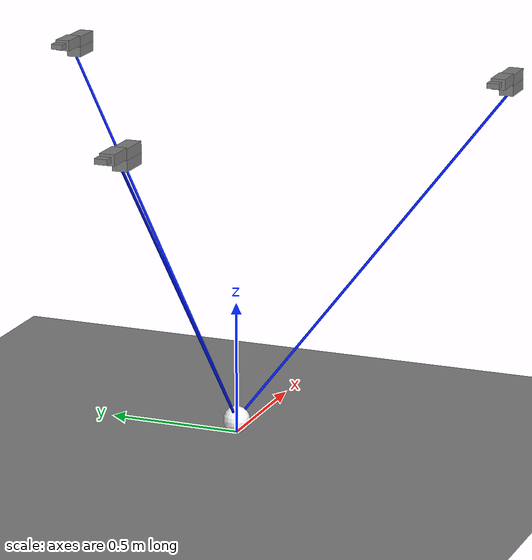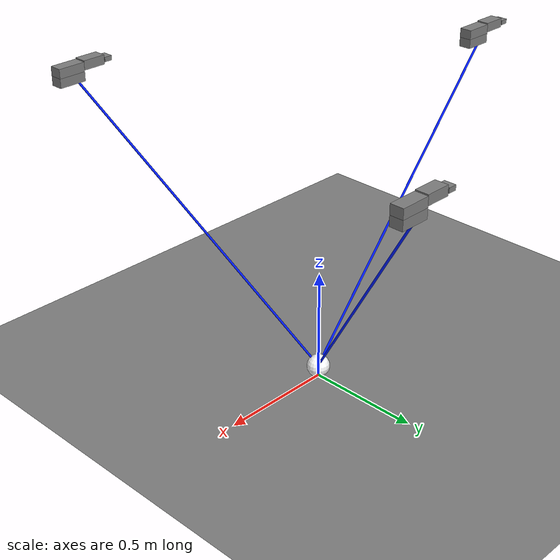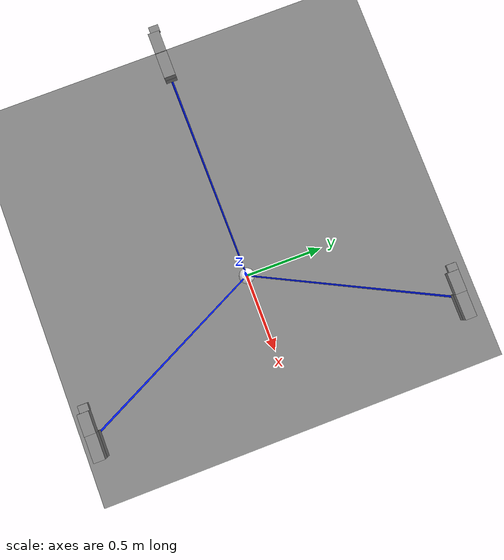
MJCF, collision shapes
<?xml version="1.0" encoding="utf-8"?>
<mujoco model="DroneWithCable">
  <compiler autolimits="true" assetdir="assets"/>
  <option timestep="0.01" gravity="0 0 -9.81" density="1.225" viscosity="1.8e-5"/>

  <default>
    <default class="x2">
      <geom mass="0"/>
      <motor ctrlrange="0 13"/>
      <mesh scale="0.01 0.01 0.01"/>
      <default class="visual">
        <geom group="2" type="mesh" contype="0" conaffinity="0"/>
      </default>
      <default class="collision">
        <geom group="3" type="box"/>
        <default class="rotor">
          <geom type="ellipsoid" size=".13 .13 .01"/>
        </default>
      </default>
      <site group="5"/>
    </default>
  </default>

  <asset>
    <texture type="2d" file="X2_lowpoly_texture_SpinningProps_1024.png"/>
    <material name="phong3SG" texture="X2_lowpoly_texture_SpinningProps_1024"/>
    <material name="invisible" rgba="0 0 0 0"/>
    <mesh class="x2" file="X2_lowpoly.obj"/>

    <texture name="grid" type="2d" builtin="checker" width="512" height="512"
             rgb1="0.8 0.8 0.8" rgb2="0.2 0.2 0.2"/>
    <material name="grid_mat" texture="grid" texrepeat="10 10" reflectance="0.2"/>
  </asset>

  <worldbody>
    <camera name="overview" pos="0 -10 10" xyaxes="1 0 0 0 0.707 0.707"/>
    <geom name="floor" type="plane" size="10 10 0.1" material="grid_mat" contype="1" conaffinity="1"/>

    <!-- Movable ball anchor point for the cable -->
    <body name="anchor" pos="0 0 0.05">
      <freejoint/>
      <geom type="sphere" size="0.05" mass="0.1" rgba="1 1 1 1"/>
      <site name="anchor_site" pos="0 0 0" size="0.01"/>
    </body>

    <!-- Drone 1 tethered to anchor -->
    <body name="drone1" pos="0.5 0.866 1.25" childclass="x2">
      <freejoint/>
      <inertial pos="0 0 0" mass="1.0" diaginertia="0.01 0.01 0.02"/>
      <site name="imu1" pos="0 0 .02"/>
      <geom material="phong3SG" mesh="X2_lowpoly" class="visual" quat="0 0 1 1"/>
      <geom class="collision" size=".06 .027 .02" pos=".04 0 .02"/>
      <geom class="collision" size=".06 .027 .02" pos=".04 0 .06"/>
      <geom class="collision" size=".05 .027 .02" pos="-.07 0 .065"/>
      <geom class="collision" size=".023 .017 .01" pos="-.137 .008 .065" quat="1 0 0 1"/>
      <site name="tether_site_1" pos="0 0 0" size="0.01"/>
      <site name="thrust1_1" pos="-.14 -.18 .05"/>
      <site name="thrust2_1" pos="-.14 .18 .05"/>
      <site name="thrust3_1" pos=".14 .18 .08"/>
      <site name="thrust4_1" pos=".14 -.18 .08"/>
    </body>

    <!-- Drone 2 tethered to anchor -->
    <body name="drone2" pos="-1 0 1.25" childclass="x2">
      <freejoint/>
      <inertial pos="0 0 0" mass="1.0" diaginertia="0.01 0.01 0.02"/>
      <site name="imu2" pos="0 0 .02"/>
      <geom material="phong3SG" mesh="X2_lowpoly" class="visual" quat="0 0 1 1"/>
      <geom class="collision" size=".06 .027 .02" pos=".04 0 .02"/>
      <geom class="collision" size=".06 .027 .02" pos=".04 0 .06"/>
      <geom class="collision" size=".05 .027 .02" pos="-.07 0 .065"/>
      <geom class="collision" size=".023 .017 .01" pos="-.137 .008 .065" quat="1 0 0 1"/>
      <site name="tether_site_2" pos="0 0 0" size="0.01"/>
      <site name="thrust1_2" pos="-.14 -.18 .05"/>
      <site name="thrust2_2" pos="-.14 .18 .05"/>
      <site name="thrust3_2" pos=".14 .18 .08"/>
      <site name="thrust4_2" pos=".14 -.18 .08"/>
    </body>

    <!-- Drone 3 tethered to anchor -->
    <body name="drone3" pos="0.5 -0.866 1.25" childclass="x2">
      <freejoint/>
      <inertial pos="0 0 0" mass="1.0" diaginertia="0.01 0.01 0.02"/>
      <site name="imu3" pos="0 0 .02"/>
      <geom material="phong3SG" mesh="X2_lowpoly" class="visual" quat="0 0 1 1"/>
      <geom class="collision" size=".06 .027 .02" pos=".04 0 .02"/>
      <geom class="collision" size=".06 .027 .02" pos=".04 0 .06"/>
      <geom class="collision" size=".05 .027 .02" pos="-.07 0 .065"/>
      <geom class="collision" size=".023 .017 .01" pos="-.137 .008 .065" quat="1 0 0 1"/>
      <site name="tether_site_3" pos="0 0 0" size="0.01"/>
      <site name="thrust1_3" pos="-.14 -.18 .05"/>
      <site name="thrust2_3" pos="-.14 .18 .05"/>
      <site name="thrust3_3" pos=".14 .18 .08"/>
      <site name="thrust4_3" pos=".14 -.18 .08"/>
    </body>
  </worldbody>

  <actuator>
    <!-- Drone 1 actuators -->
    <motor name="thrust1_1" site="thrust1_1" class="x2" gear="0 0 1 0 0  .0201"/>
    <motor name="thrust2_1" site="thrust2_1" class="x2" gear="0 0 1 0 0 -.0201"/>
    <motor name="thrust3_1" site="thrust3_1" class="x2" gear="0 0 1 0 0  .0201"/>
    <motor name="thrust4_1" site="thrust4_1" class="x2" gear="0 0 1 0 0 -.0201"/>

    <!-- Drone 2 actuators -->
    <motor name="thrust1_2" site="thrust1_2" class="x2" gear="0 0 1 0 0  .0201"/>
    <motor name="thrust2_2" site="thrust2_2" class="x2" gear="0 0 1 0 0 -.0201"/>
    <motor name="thrust3_2" site="thrust3_2" class="x2" gear="0 0 1 0 0  .0201"/>
    <motor name="thrust4_2" site="thrust4_2" class="x2" gear="0 0 1 0 0 -.0201"/>

    <!-- Drone 3 actuators -->
    <motor name="thrust1_3" site="thrust1_3" class="x2" gear="0 0 1 0 0  .0201"/>
    <motor name="thrust2_3" site="thrust2_3" class="x2" gear="0 0 1 0 0 -.0201"/>
    <motor name="thrust3_3" site="thrust3_3" class="x2" gear="0 0 1 0 0  .0201"/>
    <motor name="thrust4_3" site="thrust4_3" class="x2" gear="0 0 1 0 0 -.0201"/>
  </actuator>

  <tendon>
    <!-- Drone→Anchor cables: slack until 0.5 m, then act as tension-only spring+damper -->
    <spatial limited="true" range="0 2" rgba="0 .1 1 1" width=".005">
      <site site="anchor_site"/>
      <site site="tether_site_1"/>
    </spatial>

    <spatial limited="true" range="0 2" rgba="0 .1 1 1" width=".005">
      <site site="anchor_site"/>
      <site site="tether_site_2"/>
    </spatial>

    <spatial limited="true" range="0 2" rgba="0 .1 1 1" width=".005">
      <site site="anchor_site"/>
      <site site="tether_site_3"/>
    </spatial>
  </tendon>
</mujoco>
